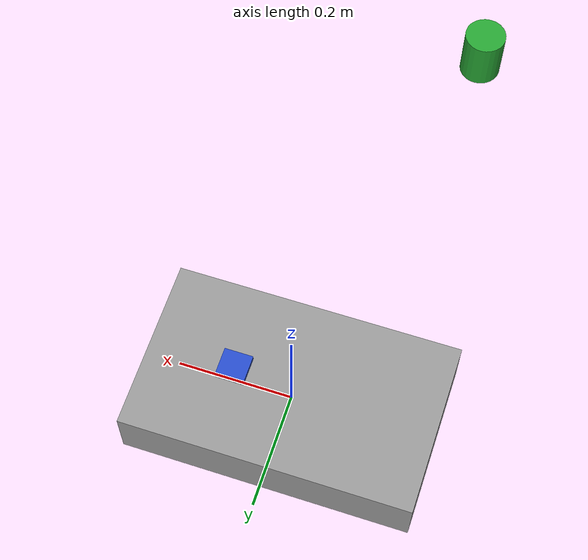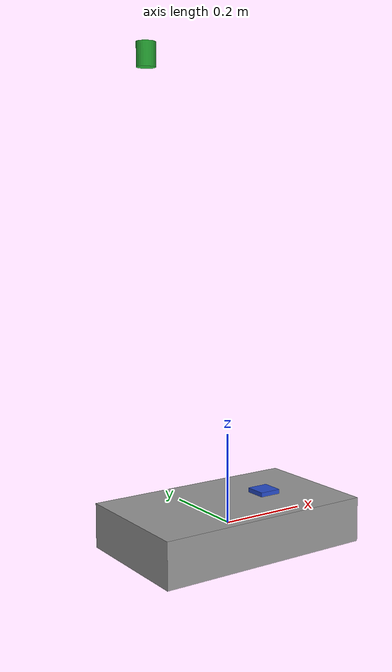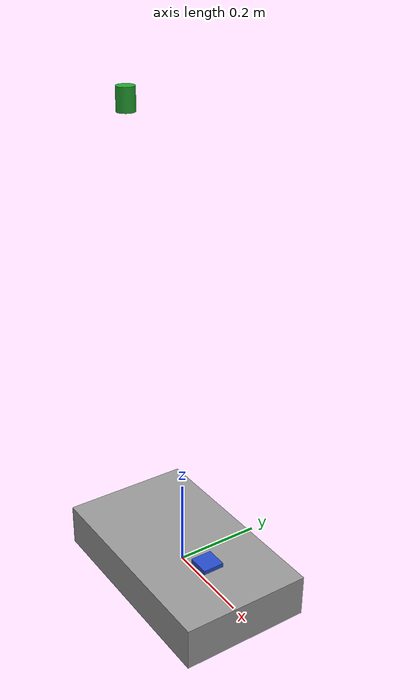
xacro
<?xml version="1.0"?>
<!-- robot.urdf.xacro: Defines base_link, imu_link, gps_link and static joints -->
<robot xmlns:xacro="http://ros.org/wiki/xacro" name="rover">

  <!-- Sensor offset properties (adjust these values for your mounting geometry) -->
  <xacro:property name="imu_offset_x" value="0.1" />  <!-- meters forward from base_link -->
  <xacro:property name="imu_offset_y" value="0.0" />  <!-- meters left of base_link -->
  <xacro:property name="imu_offset_z" value="0.05" /> <!-- meters above base_link -->

  <xacro:property name="gps_offset_x" value="-0.2" />  <!-- meters behind base_link -->
  <xacro:property name="gps_offset_y" value="0.0" />   <!-- meters left of base_link -->
  <xacro:property name="gps_offset_z" value="1.0" />   <!-- meters above base_link -->

  <!-- Base link of the robot -->
  <link name="base_link">
    <visual>
      <geometry>
        <box size="0.5 0.3 0.1" /> <!-- example dimensions -->
      </geometry>
      <material name="gray"/>
    </visual>
    <collision>
      <geometry>
        <box size="0.5 0.3 0.1" />
      </geometry>
    </collision>
    <inertial>
      <mass value="5.0" />
      <inertia ixx="0.1" ixy="0.0" ixz="0.0" iyy="0.1" iyz="0.0" izz="0.1" />
    </inertial>
  </link>

  <!-- IMU sensor link -->
  <link name="imu_link">
    <visual>
      <geometry>
        <box size="0.05 0.05 0.02" />
      </geometry>
      <material name="blue"/>
    </visual>
  </link>

  <!-- Fixed joint: base_link -> imu_link -->
  <joint name="base_to_imu" type="fixed">
    <parent link="base_link"/>
    <child link="imu_link"/>
    <origin xyz="${imu_offset_x} ${imu_offset_y} ${imu_offset_z}" rpy="0 0 0"/>
  </joint>

  <!-- GPS sensor link -->
  <link name="gps_link">
    <visual>
      <geometry>
        <cylinder length="0.05" radius="0.02" />
      </geometry>
      <material name="green"/>
    </visual>
  </link>

  <!-- Fixed joint: base_link -> gps_link -->
  <joint name="base_to_gps" type="fixed">
    <parent link="base_link"/>
    <child link="gps_link"/>
    <origin xyz="${gps_offset_x} ${gps_offset_y} ${gps_offset_z}" rpy="0 0 0"/>
  </joint>

</robot>
